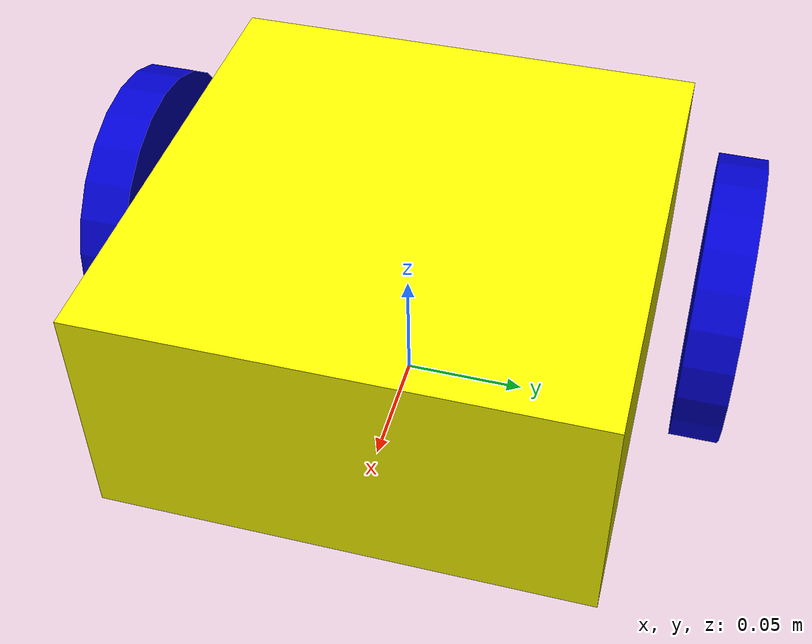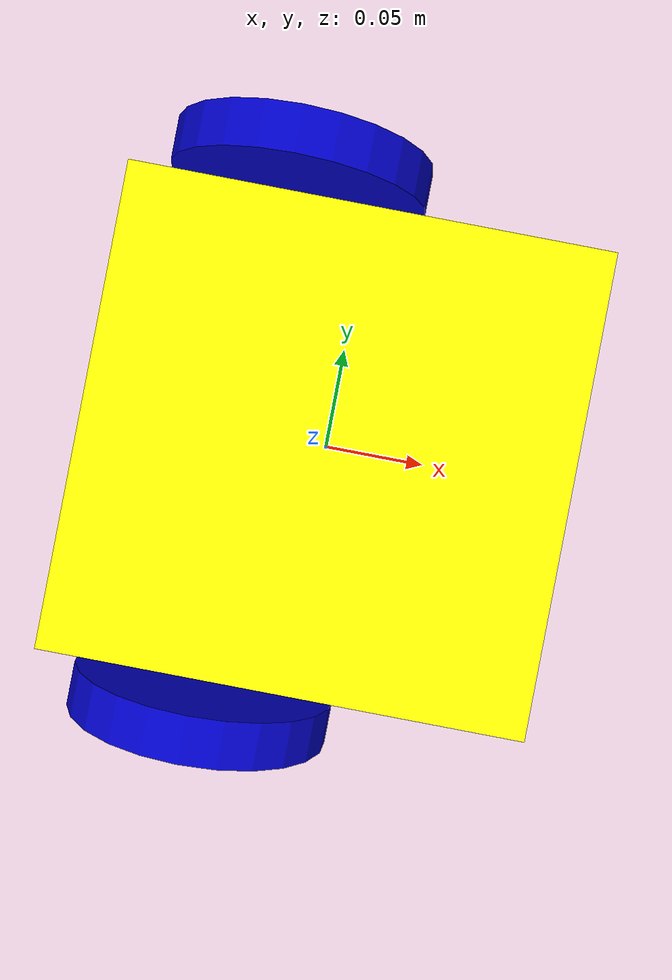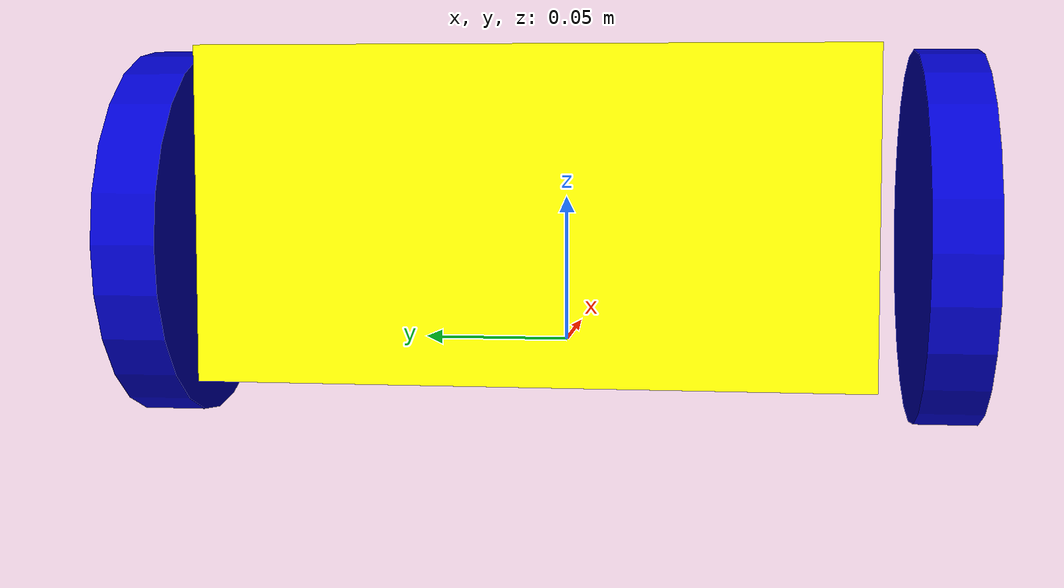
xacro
<?xml version="1.0"?>
<robot xmlns:xacro="http://www.ros.org/wiki/xacro">

    <xacro:include filename="macro_inertia.xacro"/>

    <!-- Colors -->

    <material name="black">
        <color rgba="0.0 0.0 0.0 1.0"/>
    </material>

    <material name="dark">
        <color rgba="0.3 0.3 0.3 1.0"/>
    </material>
    <material name="light_black">
        <color rgba="0.4 0.4 0.4 1.0"/>
    </material>

    <material name="blue">
        <color rgba="0.0 0.0 0.8 1.0"/>
    </material>

    <material name="green">
        <color rgba="0.0 0.8 0.0 1.0"/>
    </material>

    <material name="grey">
        <color rgba="0.5 0.5 0.5 1.0"/>
    </material>

    <material name="yellow">
        <color rgba="1.0 1.0 0.0 1.0"/>
    </material>

    <material name="orange">
        <color rgba="${255/255} ${108/255} ${10/255} 1.0"/>
    </material>

    <material name="brown">
        <color rgba="${222/255} ${207/255} ${195/255} 1.0"/>
    </material>

    <material name="red">
        <color rgba="0.8 0.0 0.0 1.0"/>
    </material>

    <material name="white">
        <color rgba="1.0 1.0 1.0 1.0"/>
    </material>

    <!-- Base Link -->
    <link name="base_link"></link>

    <!-- Base Footprint -->
    <joint name="base_footprint_joint" type="fixed">
        <parent link="base_link"/>
        <child link="base_footprint"/>
        <origin xyz="0 0 0" rpy="0 0 0"/>
    </joint>

    <link name="base_footprint"></link>

    <!-- CHASSIS LINK-->
    <joint name="chassis_joint" type="fixed">
        <parent link ="base_link"/>
        <child link ="chassis"/>
        <origin xyz="-0.1 0 0"/>
    </joint>

    <link name="chassis">
        <visual>
            <origin xyz="0.1 0 0.05"/>
            <geometry>
                <box size="0.2 0.2 0.1"/>
            </geometry>
            <material name="yellow"/>
        </visual>
        <collision>
            <origin xyz="0.1 0 0.05"/>
            <geometry>
                <box size="0.2 0.2 0.1"/>
            </geometry>
        </collision>
        <xacro:inertial_box mass="0.2" x="0.2" y="0.2" z="0.1">
            <origin xyz="0.225 0 0.025" rpy="0 0 0"/>
        </xacro:inertial_box>
    </link>

    <!-- LEFT WHEEL LINK -->

    <joint name="left_wheel_joint" type="continuous">
        <parent link="base_link"/>
        <child link="left_wheel"/>
        <origin xyz="-0.035 0.125 0.04" rpy="-${pi/2} 0 0" />
        <axis xyz="0 0 1"/>
    </joint>

    <link name="left_wheel">
        <visual>
            <geometry>
                <cylinder radius="0.06" length="0.02"/>
            </geometry>
            <material name="blue"/>
        </visual>
        <collision>
            <geometry>
                <cylinder radius="0.06" length="0.02"/>
            </geometry>
        </collision>
        <xacro:inertial_cylinder mass="0.1" length="0.02" radius="0.06">
            <origin xyz="0 0 0" rpy="0 0 0"/>
        </xacro:inertial_cylinder>
    </link>

    <!-- RIGHT WHEEL LINK -->

    <joint name="right_wheel_joint" type="continuous">
        <parent link="base_link"/>
        <child link="right_wheel"/>
        <origin xyz="-0.035 -0.125 0.04" rpy="${pi/2} 0 0" />
        <axis xyz="0 0 -1"/>
    </joint>

    <link name="right_wheel">
        <visual>
            <geometry>
                <cylinder radius="0.06" length="0.02"/>
            </geometry>
            <material name="blue"/>
        </visual>
        <collision>
            <geometry>
                <cylinder radius="0.06" length="0.02"/>
            </geometry>
        </collision>
        <xacro:inertial_cylinder mass="0.1" length="0.02" radius="0.06">
            <origin xyz="0 0 0" rpy="0 0 0"/>
        </xacro:inertial_cylinder>
    </link>

    <!-- CASTER WHEEL LINK -->

    <joint name="caster_wheel_joint" type="fixed">
        <parent link="base_link"/>
        <child link="caster_wheel"/>
        <origin xyz="0.061 0.0 0.0"/>
    </joint>

    <link name="caster_wheel">
        <visual>
            <geometry>
                <sphere radius="0.021"/>
            </geometry>
            <material name="red"/>
        </visual>
        <collision>
            <geometry>
                <sphere radius="0.021"/>
            </geometry>

            <surface>
                <friction>
                    <ode>
                        <mu>0.001</mu>
                        <mu2>0.001</mu2>
                    </ode>
                </friction>
            </surface>

        </collision>
        <xacro:inertial_sphere mass="0.1" radius="0.021">
            <origin xyz="0 0 0" rpy="0 0 0"/>
        </xacro:inertial_sphere>
    </link>

    <gazebo reference="caster_wheel">
        <mu1 value="0.001"/>
        <mu2 value="0.001"/>
    </gazebo>

</robot>

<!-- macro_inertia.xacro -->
<robot xmlns:xacro="http://www.ros.org/wiki/xacro" >

    <!-- Some standard inertial calculations https://en.wikipedia.org/wiki/List_of_moments_of_inertia -->

    <xacro:macro name="inertial_sphere" params="mass radius *origin">
        <inertial>
            <xacro:insert_block name="origin"/>
            <mass value="${mass}" />
            <inertia ixx="${(2/5) * mass * (radius*radius)}" ixy="0.0" ixz="0.0"
                    iyy="${(2/5) * mass * (radius*radius)}" iyz="0.0"
                    izz="${(2/5) * mass * (radius*radius)}" />
        </inertial>
    </xacro:macro>

    <xacro:macro name="inertial_box" params="mass x y z *origin">
        <inertial>
            <xacro:insert_block name="origin"/>
            <mass value="${mass}" />
            <inertia ixx="${(1/12) * mass * (y*y+z*z)}" ixy="0.0" ixz="0.0"
                    iyy="${(1/12) * mass * (x*x+z*z)}" iyz="0.0"
                    izz="${(1/12) * mass * (x*x+y*y)}" />
        </inertial>
    </xacro:macro>

    <xacro:macro name="inertial_cylinder" params="mass length radius *origin">
        <inertial>
            <xacro:insert_block name="origin"/>
            <mass value="${mass}" />
            <inertia ixx="${(1/12) * mass * (3*radius*radius + length*length)}" ixy="0.0" ixz="0.0"
                    iyy="${(1/12) * mass * (3*radius*radius + length*length)}" iyz="0.0"
                    izz="${(1/2) * mass * (radius*radius)}" />
        </inertial>
    </xacro:macro>

</robot>
